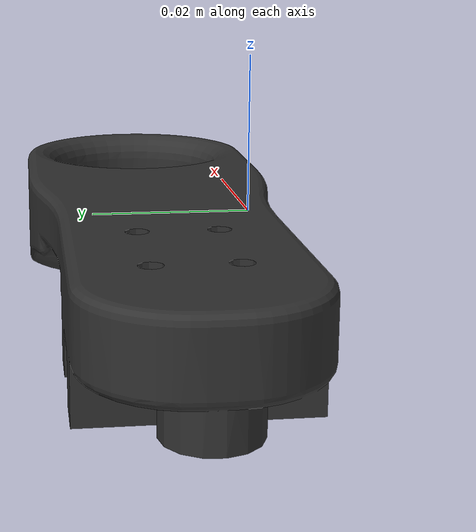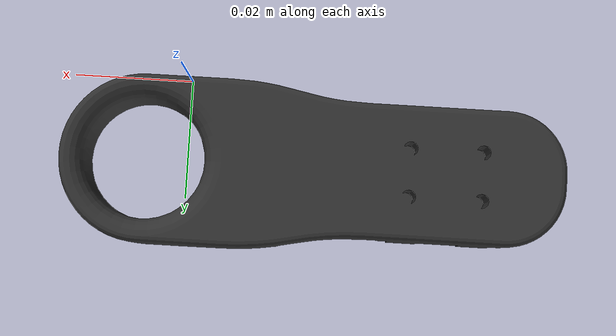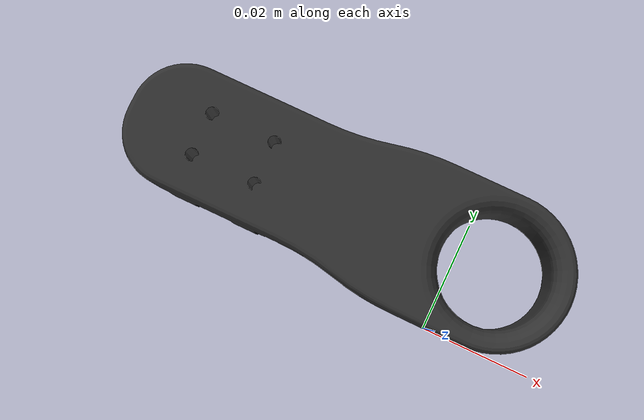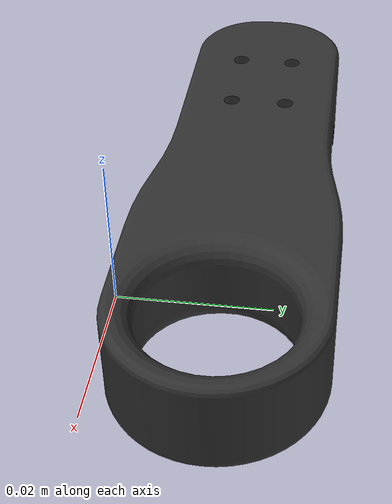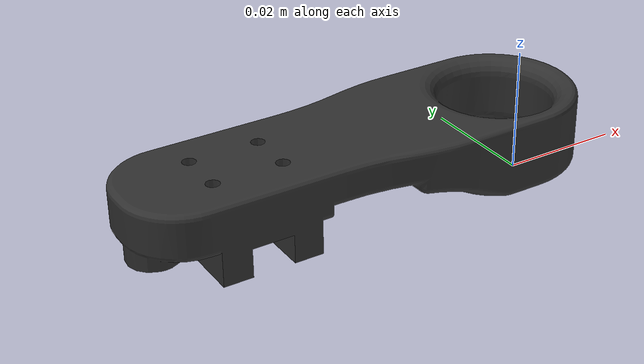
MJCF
<mujoco model="link8_master">
  <default>
    <default class="visual">
      <geom group="2" type="mesh" contype="0" conaffinity="0"/>
    </default>
    <default class="collision">
      <geom group="3" type="mesh"/>
    </default>
  </default>
  <asset>
    <material name="Material-塑胶.004" specular="0.0" shininess="0.25" rgba="0.588235 0.588235 0.588235 1.000000"/>
    <material name="grey_metal.004" specular="0.5" shininess="0.09604875199999999" rgba="0.191349 0.191349 0.191349 1.000000"/>
    <mesh file="link8_master_0.obj"/>
    <mesh file="link8_master_1.obj"/>
    <mesh file="link8_master_collision_0.obj"/>
    <mesh file="link8_master_collision_1.obj"/>
    <mesh file="link8_master_collision_2.obj"/>
  </asset>
  <worldbody>
    <body name="link8_master">
      <geom mesh="link8_master_0" material="Material-塑胶.004" class="visual"/>
      <geom mesh="link8_master_1" material="grey_metal.004" class="visual"/>
      <geom mesh="link8_master_collision_0" rgba="0.9294526551363033 0.8327960683623072 0.08310157896781234 1" class="collision"/>
      <geom mesh="link8_master_collision_1" rgba="0.8730288140126405 0.5783148798514905 0.2079652480193359 1" class="collision"/>
      <geom mesh="link8_master_collision_2" rgba="0.8486688695479669 0.06582783808965154 0.7918771598440246 1" class="collision"/>
    </body>
  </worldbody>
</mujoco>
